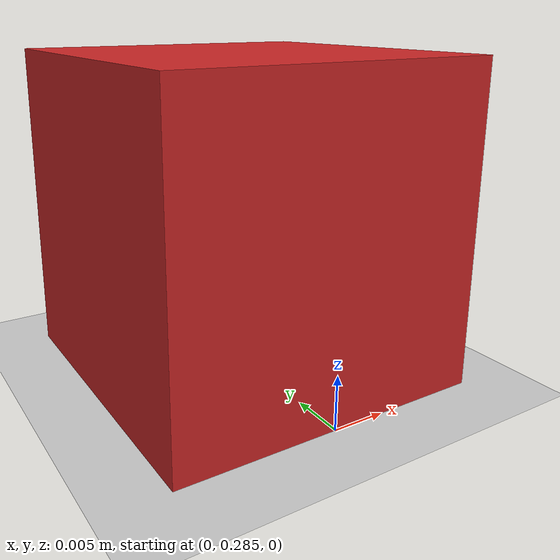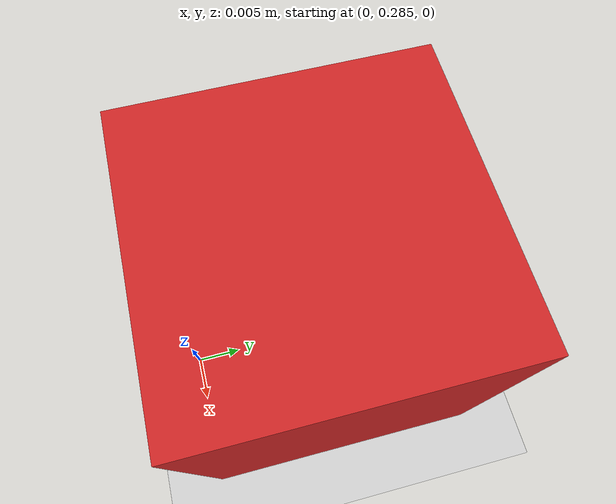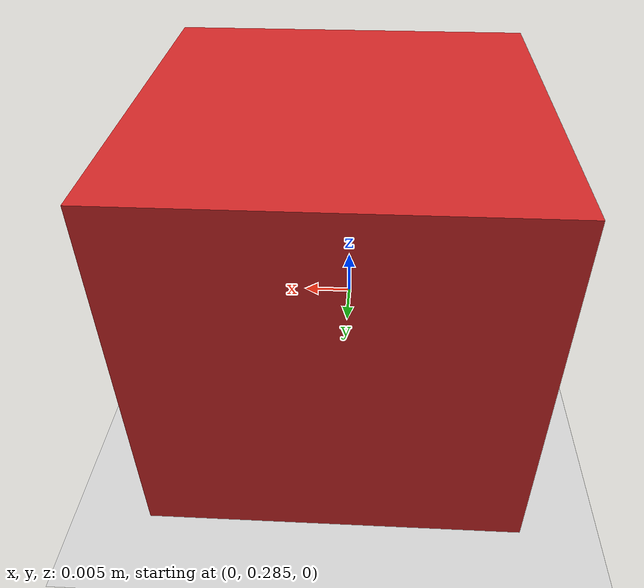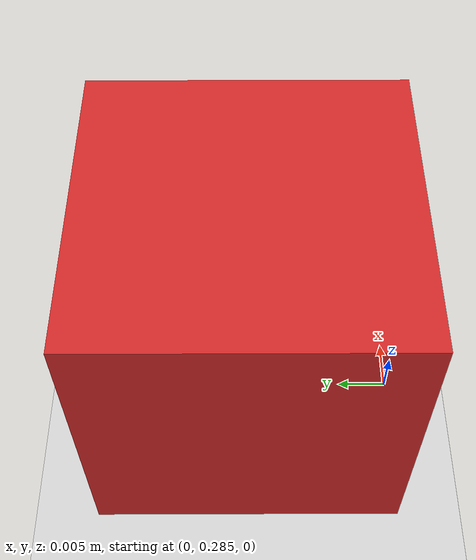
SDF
<sdf version="1.7">
 <world name="default">
  <light name="sun" type="directional">
   <pose>0 0 10 0 -0 0</pose>
   <diffuse>0.8 0.8 0.8 1</diffuse>
   <specular>0.2 0.2 0.2 1</specular>
   <attenuation>
    <range>1000</range>
    <constant>0.9</constant>
    <linear>0.01</linear>
    <quadratic>0.001</quadratic>
   </attenuation>
   <direction>-0.5 0.1 -0.9</direction>
   <spot><inner_angle>0</inner_angle><outer_angle>0</outer_angle><falloff>0</falloff></spot>
  </light>
  <model name="ground_plane">
   <static>1</static>
   <link name="link">
    <collision name="collision">
     <geometry><plane><normal>0 0 1</normal><size>100 100</size></plane></geometry>
     <surface>
      <contact><collide_bitmask>65535</collide_bitmask></contact>
      <friction><ode><mu>100</mu><mu2>50</mu2></ode></friction>
     </surface>
    </collision>
    <visual name="visual">
     <cast_shadows>0</cast_shadows>
     <geometry><plane><normal>0 0 1</normal><size>100 100</size></plane></geometry>
     <material>
      <script><uri>file://media/materials/scripts/gazebo.material</uri><name>Gazebo/Grey</name></script>
     </material>
    </visual>
   </link>
  </model>
  <gravity>0 0 -9.8</gravity>
  <magnetic_field>6e-06 2.3e-05 -4.2e-05</magnetic_field>
  <atmosphere type="adiabatic"/>
  <physics type="ode">
   <max_step_size>0.001</max_step_size>
   <real_time_factor>1</real_time_factor>
   <real_time_update_rate>1000</real_time_update_rate>
  </physics>
  <scene><ambient>0.4 0.4 0.4 1</ambient><background>0.7 0.7 0.7 1</background><shadows>1</shadows></scene>
  <spherical_coordinates>
   <surface_model>EARTH_WGS84</surface_model>
   <latitude_deg>0</latitude_deg>
   <longitude_deg>0</longitude_deg>
   <elevation>0</elevation>
   <heading_deg>0</heading_deg>
  </spherical_coordinates>
  <model name="cube">
   <link name="link">
    <pose>0 0 0.015 0 -0 0</pose>
    <inertial>
     <mass>0.005</mass>
     <inertia><ixx>0.83</ixx><ixy>0</ixy><ixz>0</ixz><iyy>0.83</iyy><iyz>0</iyz><izz>0.83</izz></inertia>
    </inertial>
    <collision name="collision">
     <geometry><box><size>0.03 0.03 0.03</size></box></geometry>
     <surface><friction><ode><mu2>150</mu2><kp>1000.0</kp><kd>1000.0</kd><mu1>300</mu1></ode></friction></surface>
    </collision>
    <visual name="visual">
     <geometry><box><size>0.03 0.03 0.03</size></box></geometry>
     <material>
      <script><uri>file://media/materials/scripts/gazebo.material</uri><name>Gazebo/Red</name></script>
     </material>
    </visual>
   </link>
   <pose>-0 0.3 0 -1e-06 -1e-06 0</pose>
  </model>
 </world>
</sdf>
